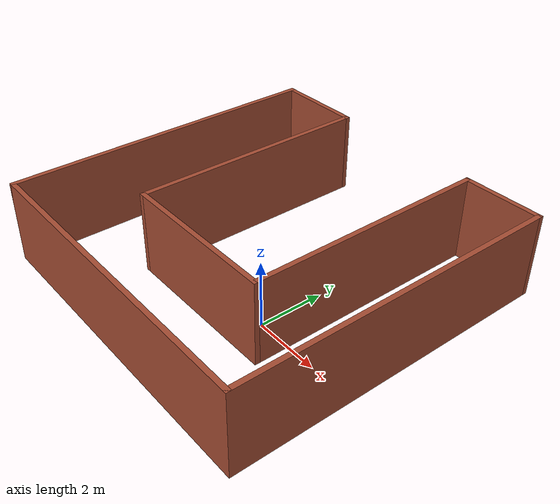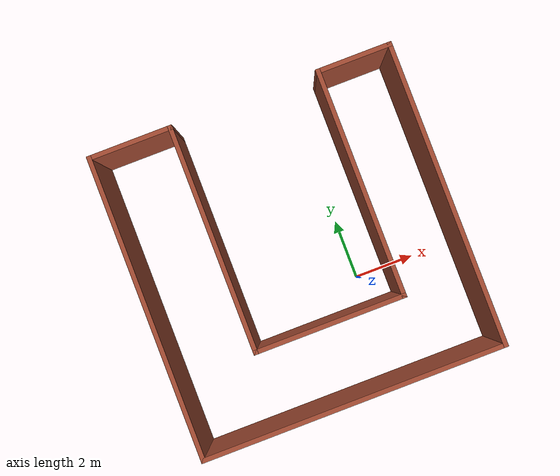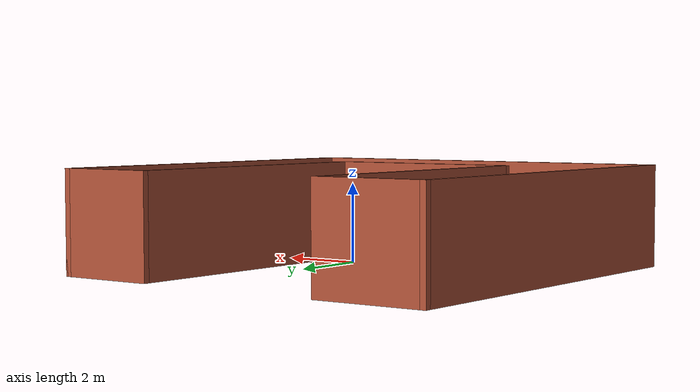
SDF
<?xml version='1.0'?>
<sdf version='1.7'>
  <model name='mybuilding'>
    <pose>-1.58441 1.4758 0 0 -0 0</pose>
    <link name='Wall_10'>
      <collision name='Wall_10_Collision'>
        <geometry>
          <box>
            <size>10 0.15 2.5</size>
          </box>
        </geometry>
        <pose>0 0 1.25 0 -0 0</pose>
      </collision>
      <visual name='Wall_10_Visual'>
        <pose>0 0 1.25 0 -0 0</pose>
        <geometry>
          <box>
            <size>10 0.15 2.5</size>
          </box>
        </geometry>
        <material>
          <script>
            <uri>file://media/materials/scripts/gazebo.material</uri>
            <name>Gazebo/Bricks</name>
          </script>
          <ambient>0.760784 0.662745 0.627451 1</ambient>
        </material>
        <meta>
          <layer>0</layer>
        </meta>
      </visual>
      <pose>-4.925 0 0 0 -0 -1.5708</pose>
    </link>
    <link name='Wall_11'>
      <collision name='Wall_11_Collision'>
        <geometry>
          <box>
            <size>10 0.15 2.5</size>
          </box>
        </geometry>
        <pose>0 0 1.25 0 -0 0</pose>
      </collision>
      <visual name='Wall_11_Visual'>
        <pose>0 0 1.25 0 -0 0</pose>
        <geometry>
          <box>
            <size>10 0.15 2.5</size>
          </box>
        </geometry>
        <material>
          <script>
            <uri>file://media/materials/scripts/gazebo.material</uri>
            <name>Gazebo/Bricks</name>
          </script>
          <ambient>0.760784 0.662745 0.627451 1</ambient>
        </material>
        <meta>
          <layer>0</layer>
        </meta>
      </visual>
      <pose>0 -4.925 0 0 -0 0</pose>
    </link>
    <link name='Wall_12'>
      <collision name='Wall_12_Collision'>
        <geometry>
          <box>
            <size>10 0.15 2.5</size>
          </box>
        </geometry>
        <pose>0 0 1.25 0 -0 0</pose>
      </collision>
      <visual name='Wall_12_Visual'>
        <pose>0 0 1.25 0 -0 0</pose>
        <geometry>
          <box>
            <size>10 0.15 2.5</size>
          </box>
        </geometry>
        <material>
          <script>
            <uri>file://media/materials/scripts/gazebo.material</uri>
            <name>Gazebo/Bricks</name>
          </script>
          <ambient>0.760784 0.662745 0.627451 1</ambient>
        </material>
        <meta>
          <layer>0</layer>
        </meta>
      </visual>
      <pose>4.925 0 0 0 -0 1.5708</pose>
    </link>
    <link name='Wall_13'>
      <collision name='Wall_13_Collision'>
        <geometry>
          <box>
            <size>2.5 0.15 2.5</size>
          </box>
        </geometry>
        <pose>0 0 1.25 0 -0 0</pose>
      </collision>
      <visual name='Wall_13_Visual'>
        <pose>0 0 1.25 0 -0 0</pose>
        <geometry>
          <box>
            <size>2.5 0.15 2.5</size>
          </box>
        </geometry>
        <material>
          <script>
            <uri>file://media/materials/scripts/gazebo.material</uri>
            <name>Gazebo/Bricks</name>
          </script>
          <ambient>0.760784 0.662745 0.627451 1</ambient>
        </material>
        <meta>
          <layer>0</layer>
        </meta>
      </visual>
      <pose>3.75 4.925 0 0 -0 3.14159</pose>
    </link>
    <link name='Wall_14'>
      <collision name='Wall_14_Collision'>
        <geometry>
          <box>
            <size>7.5 0.15 2.5</size>
          </box>
        </geometry>
        <pose>0 0 1.25 0 -0 0</pose>
      </collision>
      <visual name='Wall_14_Visual'>
        <pose>0 0 1.25 0 -0 0</pose>
        <geometry>
          <box>
            <size>7.5 0.15 2.5</size>
          </box>
        </geometry>
        <material>
          <script>
            <uri>file://media/materials/scripts/gazebo.material</uri>
            <name>Gazebo/Bricks</name>
          </script>
          <ambient>0.760784 0.662745 0.627451 1</ambient>
        </material>
        <meta>
          <layer>0</layer>
        </meta>
      </visual>
      <pose>2.575 1.25 0 0 -0 -1.5708</pose>
    </link>
    <link name='Wall_15'>
      <collision name='Wall_15_Collision'>
        <geometry>
          <box>
            <size>5 0.15 2.5</size>
          </box>
        </geometry>
        <pose>0 0 1.25 0 -0 0</pose>
      </collision>
      <visual name='Wall_15_Visual'>
        <pose>0 0 1.25 0 -0 0</pose>
        <geometry>
          <box>
            <size>5 0.15 2.5</size>
          </box>
        </geometry>
        <material>
          <script>
            <uri>file://media/materials/scripts/gazebo.material</uri>
            <name>Gazebo/Bricks</name>
          </script>
          <ambient>0.760784 0.662745 0.627451 1</ambient>
        </material>
        <meta>
          <layer>0</layer>
        </meta>
      </visual>
      <pose>0.15 -2.425 0 0 -0 3.14159</pose>
    </link>
    <link name='Wall_16'>
      <collision name='Wall_16_Collision'>
        <geometry>
          <box>
            <size>7.5 0.15 2.5</size>
          </box>
        </geometry>
        <pose>0 0 1.25 0 -0 0</pose>
      </collision>
      <visual name='Wall_16_Visual'>
        <pose>0 0 1.25 0 -0 0</pose>
        <geometry>
          <box>
            <size>7.5 0.15 2.5</size>
          </box>
        </geometry>
        <material>
          <script>
            <uri>file://media/materials/scripts/gazebo.material</uri>
            <name>Gazebo/Bricks</name>
          </script>
          <ambient>0.760784 0.662745 0.627451 1</ambient>
        </material>
        <meta>
          <layer>0</layer>
        </meta>
      </visual>
      <pose>-2.275 1.25 0 0 -0 1.5708</pose>
    </link>
    <link name='Wall_17'>
      <collision name='Wall_17_Collision'>
        <geometry>
          <box>
            <size>2.8 0.15 2.5</size>
          </box>
        </geometry>
        <pose>0 0 1.25 0 -0 0</pose>
      </collision>
      <visual name='Wall_17_Visual'>
        <pose>0 0 1.25 0 -0 0</pose>
        <geometry>
          <box>
            <size>2.8 0.15 2.5</size>
          </box>
        </geometry>
        <material>
          <script>
            <uri>file://media/materials/scripts/gazebo.material</uri>
            <name>Gazebo/Bricks</name>
          </script>
          <ambient>0.760784 0.662745 0.627451 1</ambient>
        </material>
        <meta>
          <layer>0</layer>
        </meta>
      </visual>
      <pose>-3.6 4.925 0 0 -0 -3.14159</pose>
    </link>
    <static>1</static>
  </model>
</sdf>
